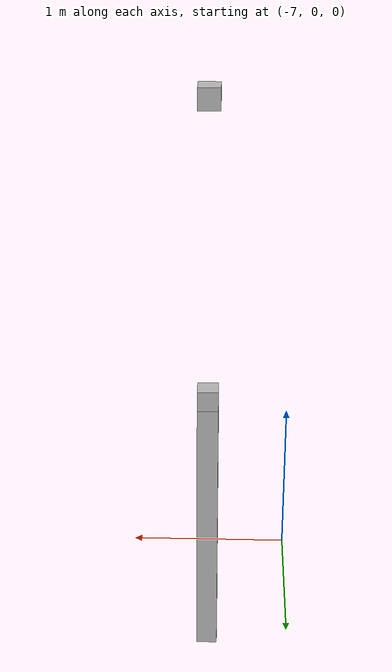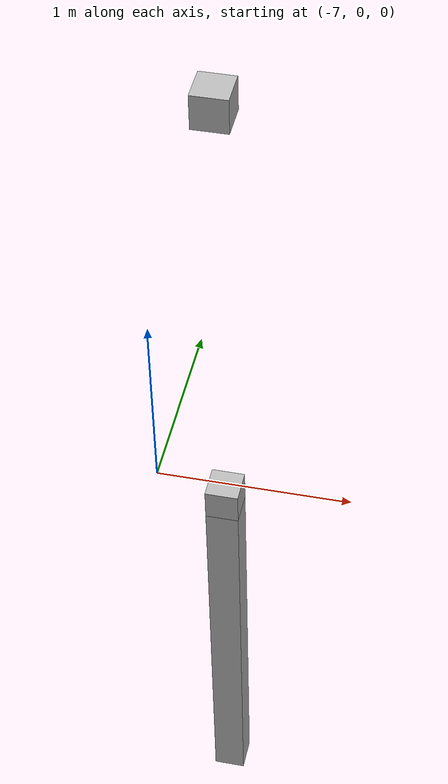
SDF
<sdf version="1.7">
 <world name="default">
  <model name="orthogonal_747_2.000.15_TS">
   <static>1</static>
   <link name="u_link_1_2_0">
    <inertial>
     <mass>1</mass>
     <inertia>
      <ixx>0.166667</ixx>
      <ixy>0</ixy>
      <ixz>0</ixz>
      <iyy>0.166667</iyy>
      <iyz>0</iyz>
      <izz>0.166667</izz>
     </inertia>
    </inertial>
    <pose>0 4.3 3.225 0 -0 0</pose>
    <visual name="visual_0">
     <laser_retro>1156</laser_retro>
     <geometry><box><size>0.15 1e-06 0.15</size></box></geometry>
     <material>
      <script><name>Gazebo/Grey</name><uri>file://media/materials/scripts/gazebo.material</uri></script>
      <shader type="pixel"><normal_map>__default__</normal_map></shader>
      <ambient>0.678 0.498 0.659 1</ambient>
      <diffuse>0.7 0.7 0.7 1</diffuse>
      <specular>0.01 0.01 0.01 1</specular>
      <emissive>0 0 0 1</emissive>
     </material>
     <pose>0 -0.075 0 0 -0 0</pose>
     <transparency>1</transparency>
    </visual>
    <visual name="visual_1">
     <laser_retro>1157</laser_retro>
     <geometry><box><size>0.15 1e-06 0.15</size></box></geometry>
     <material>
      <script><name>Gazebo/Grey</name><uri>file://media/materials/scripts/gazebo.material</uri></script>
      <shader type="pixel"><normal_map>__default__</normal_map></shader>
      <ambient>0.447 0.624 0.812 1</ambient>
      <diffuse>0.7 0.7 0.7 1</diffuse>
      <specular>0.01 0.01 0.01 1</specular>
      <emissive>0 0 0 1</emissive>
     </material>
     <pose>0 0.075 0 0 -0 0</pose>
     <transparency>1</transparency>
    </visual>
    <visual name="visual_2">
     <laser_retro>1158</laser_retro>
     <geometry><box><size>0.15 0.15 1e-06</size></box></geometry>
     <material>
      <script><name>Gazebo/Grey</name><uri>file://media/materials/scripts/gazebo.material</uri></script>
      <shader type="pixel"><normal_map>__default__</normal_map></shader>
      <ambient>0.988 0.686 0.243 1</ambient>
      <diffuse>0.7 0.7 0.7 1</diffuse>
      <specular>0.01 0.01 0.01 1</specular>
      <emissive>0 0 0 1</emissive>
     </material>
     <pose>0 0 -0.075 0 -0 0</pose>
     <transparency>1</transparency>
    </visual>
    <visual name="visual_3">
     <laser_retro>1159</laser_retro>
     <geometry><box><size>1e-06 0.15 0.15</size></box></geometry>
     <material>
      <script><name>Gazebo/Grey</name><uri>file://media/materials/scripts/gazebo.material</uri></script>
      <shader type="pixel"><normal_map>__default__</normal_map></shader>
      <ambient>0.988 0.914 0.31 1</ambient>
      <diffuse>0.7 0.7 0.7 1</diffuse>
      <specular>0.01 0.01 0.01 1</specular>
      <emissive>0 0 0 1</emissive>
     </material>
     <pose>0.075 0 0 0 -0 0</pose>
     <transparency>1</transparency>
    </visual>
    <visual name="visual_4">
     <laser_retro>1160</laser_retro>
     <geometry><box><size>0.15 0.15 1e-06</size></box></geometry>
     <material>
      <script><name>Gazebo/Grey</name><uri>file://media/materials/scripts/gazebo.material</uri></script>
      <shader type="pixel"><normal_map>__default__</normal_map></shader>
      <ambient>0.937 0.161 0.161 1</ambient>
      <diffuse>0.7 0.7 0.7 1</diffuse>
      <specular>0.01 0.01 0.01 1</specular>
      <emissive>0 0 0 1</emissive>
     </material>
     <pose>0 0 0.075 0 -0 0</pose>
     <transparency>1</transparency>
    </visual>
    <visual name="visual_5">
     <laser_retro>1161</laser_retro>
     <geometry><box><size>1e-06 0.15 0.15</size></box></geometry>
     <material>
      <script><name>Gazebo/Grey</name><uri>file://media/materials/scripts/gazebo.material</uri></script>
      <shader type="pixel"><normal_map>__default__</normal_map></shader>
      <ambient>0.541 0.886 0.204 1</ambient>
      <diffuse>0.7 0.7 0.7 1</diffuse>
      <specular>0.01 0.01 0.01 1</specular>
      <emissive>0 0 0 1</emissive>
     </material>
     <pose>-0.075 0 0 0 -0 0</pose>
     <transparency>1</transparency>
    </visual>
    <visual name="visual_texture">
     <geometry><box><size>0.149985 0.149985 0.149985</size></box></geometry>
     <material>
      <script>
       <uri>model://BASE_MODELS/simple_block_v2_textured/materials/scripts</uri>
       <uri>model://BASE_MODELS/simple_block_v2_textured/materials/textures</uri>
       <name>metal</name>
      </script>
     </material>
     <laser_retro>1162</laser_retro>
    </visual>
    <collision name="collision">
     <geometry><box><size>0.15 0.15 0.15</size></box></geometry>
     <surface>
      <friction>
       <ode><mu>1</mu><mu2>1</mu2><fdir1>0 0 0</fdir1><slip1>0</slip1><slip2>0</slip2></ode>
       <torsional>
        <coefficient>1</coefficient>
        <patch_radius>0</patch_radius>
        <surface_radius>0</surface_radius>
        <use_patch_radius>1</use_patch_radius>
        <ode><slip>0</slip></ode>
       </torsional>
      </friction>
      <bounce><restitution_coefficient>0</restitution_coefficient><threshold>1e+06</threshold></bounce>
      <contact>
       <collide_without_contact>0</collide_without_contact>
       <collide_without_contact_bitmask>1</collide_without_contact_bitmask>
       <collide_bitmask>1</collide_bitmask>
       <ode>
        <soft_cfm>0</soft_cfm>
        <soft_erp>0.2</soft_erp>
        <kp>1e+13</kp>
        <kd>1</kd>
        <max_vel>0.01</max_vel>
        <min_depth>0</min_depth>
       </ode>
       <bullet>
        <split_impulse>1</split_impulse>
        <split_impulse_penetration_threshold>-0.01</split_impulse_penetration_threshold>
        <soft_cfm>0</soft_cfm>
        <soft_erp>0.2</soft_erp>
        <kp>1e+13</kp>
        <kd>1</kd>
       </bullet>
      </contact>
     </surface>
    </collision>
   </link>
   <link name="z_link_1_2_0">
    <inertial>
     <mass>1</mass>
     <inertia>
      <ixx>0.166667</ixx>
      <ixy>0</ixy>
      <ixz>0</ixz>
      <iyy>0.166667</iyy>
      <iyz>0</iyz>
      <izz>0.166667</izz>
     </inertia>
    </inertial>
    <pose>0 4.3 2.15 0 -0 0</pose>
    <visual name="visual_0">
     <laser_retro>1163</laser_retro>
     <geometry><box><size>0.15 1e-06 2</size></box></geometry>
     <material>
      <script><name>Gazebo/Grey</name><uri>file://media/materials/scripts/gazebo.material</uri></script>
      <shader type="pixel"><normal_map>__default__</normal_map></shader>
      <ambient>0.678 0.498 0.659 1</ambient>
      <diffuse>0.7 0.7 0.7 1</diffuse>
      <specular>0.01 0.01 0.01 1</specular>
      <emissive>0 0 0 1</emissive>
     </material>
     <pose>0 -0.075 0 0 -0 0</pose>
     <transparency>1</transparency>
    </visual>
    <visual name="visual_1">
     <laser_retro>1164</laser_retro>
     <geometry><box><size>0.15 1e-06 2</size></box></geometry>
     <material>
      <script><name>Gazebo/Grey</name><uri>file://media/materials/scripts/gazebo.material</uri></script>
      <shader type="pixel"><normal_map>__default__</normal_map></shader>
      <ambient>0.447 0.624 0.812 1</ambient>
      <diffuse>0.7 0.7 0.7 1</diffuse>
      <specular>0.01 0.01 0.01 1</specular>
      <emissive>0 0 0 1</emissive>
     </material>
     <pose>0 0.075 0 0 -0 0</pose>
     <transparency>1</transparency>
    </visual>
    <visual name="visual_2">
     <laser_retro>1165</laser_retro>
     <geometry><box><size>0.15 0.15 1e-06</size></box></geometry>
     <material>
      <script><name>Gazebo/Grey</name><uri>file://media/materials/scripts/gazebo.material</uri></script>
      <shader type="pixel"><normal_map>__default__</normal_map></shader>
      <ambient>0.988 0.686 0.243 1</ambient>
      <diffuse>0.7 0.7 0.7 1</diffuse>
      <specular>0.01 0.01 0.01 1</specular>
      <emissive>0 0 0 1</emissive>
     </material>
     <pose>0 0 -1 0 -0 0</pose>
     <transparency>1</transparency>
    </visual>
    <visual name="visual_3">
     <laser_retro>1166</laser_retro>
     <geometry><box><size>1e-06 0.15 2</size></box></geometry>
     <material>
      <script><name>Gazebo/Grey</name><uri>file://media/materials/scripts/gazebo.material</uri></script>
      <shader type="pixel"><normal_map>__default__</normal_map></shader>
      <ambient>0.988 0.914 0.31 1</ambient>
      <diffuse>0.7 0.7 0.7 1</diffuse>
      <specular>0.01 0.01 0.01 1</specular>
      <emissive>0 0 0 1</emissive>
     </material>
     <pose>0.075 0 0 0 -0 0</pose>
     <transparency>1</transparency>
    </visual>
    <visual name="visual_4">
     <laser_retro>1167</laser_retro>
     <geometry><box><size>0.15 0.15 1e-06</size></box></geometry>
     <material>
      <script><name>Gazebo/Grey</name><uri>file://media/materials/scripts/gazebo.material</uri></script>
      <shader type="pixel"><normal_map>__default__</normal_map></shader>
      <ambient>0.937 0.161 0.161 1</ambient>
      <diffuse>0.7 0.7 0.7 1</diffuse>
      <specular>0.01 0.01 0.01 1</specular>
      <emissive>0 0 0 1</emissive>
     </material>
     <pose>0 0 1 0 -0 0</pose>
     <transparency>1</transparency>
    </visual>
    <visual name="visual_5">
     <laser_retro>1168</laser_retro>
     <geometry><box><size>1e-06 0.15 2</size></box></geometry>
     <material>
      <script><name>Gazebo/Grey</name><uri>file://media/materials/scripts/gazebo.material</uri></script>
      <shader type="pixel"><normal_map>__default__</normal_map></shader>
      <ambient>0.541 0.886 0.204 1</ambient>
      <diffuse>0.7 0.7 0.7 1</diffuse>
      <specular>0.01 0.01 0.01 1</specular>
      <emissive>0 0 0 1</emissive>
     </material>
     <pose>-0.075 0 0 0 -0 0</pose>
     <transparency>1</transparency>
    </visual>
    <visual name="visual_texture">
     <geometry><box><size>0.149985 0.149985 1.9998</size></box></geometry>
     <material>
      <script>
       <uri>model://BASE_MODELS/simple_block_v2_textured/materials/scripts</uri>
       <uri>model://BASE_MODELS/simple_block_v2_textured/materials/textures</uri>
       <name>metal</name>
      </script>
     </material>
     <laser_retro>1169</laser_retro>
    </visual>
    <collision name="collision">
     <geometry><box><size>0.15 0.15 2</size></box></geometry>
     <surface>
      <friction>
       <ode><mu>1</mu><mu2>1</mu2><fdir1>0 0 0</fdir1><slip1>0</slip1><slip2>0</slip2></ode>
       <torsional>
        <coefficient>1</coefficient>
        <patch_radius>0</patch_radius>
        <surface_radius>0</surface_radius>
        <use_patch_radius>1</use_patch_radius>
        <ode><slip>0</slip></ode>
       </torsional>
      </friction>
      <bounce><restitution_coefficient>0</restitution_coefficient><threshold>1e+06</threshold></bounce>
      <contact>
       <collide_without_contact>0</collide_without_contact>
       <collide_without_contact_bitmask>1</collide_without_contact_bitmask>
       <collide_bitmask>1</collide_bitmask>
       <ode>
        <soft_cfm>0</soft_cfm>
        <soft_erp>0.2</soft_erp>
        <kp>1e+13</kp>
        <kd>1</kd>
        <max_vel>0.01</max_vel>
        <min_depth>0</min_depth>
       </ode>
       <bullet>
        <split_impulse>1</split_impulse>
        <split_impulse_penetration_threshold>-0.01</split_impulse_penetration_threshold>
        <soft_cfm>0</soft_cfm>
        <soft_erp>0.2</soft_erp>
        <kp>1e+13</kp>
        <kd>1</kd>
       </bullet>
      </contact>
     </surface>
    </collision>
   </link>
   <link name="u_link_2_2_0">
    <inertial>
     <mass>1</mass>
     <inertia>
      <ixx>0.166667</ixx>
      <ixy>0</ixy>
      <ixz>0</ixz>
      <iyy>0.166667</iyy>
      <iyz>0</iyz>
      <izz>0.166667</izz>
     </inertia>
    </inertial>
    <pose>0 4.3 5.375 0 -0 0</pose>
    <visual name="visual_0">
     <laser_retro>2059</laser_retro>
     <geometry><box><size>0.15 1e-06 0.15</size></box></geometry>
     <material>
      <script><name>Gazebo/Grey</name><uri>file://media/materials/scripts/gazebo.material</uri></script>
      <shader type="pixel"><normal_map>__default__</normal_map></shader>
      <ambient>0.678 0.498 0.659 1</ambient>
      <diffuse>0.7 0.7 0.7 1</diffuse>
      <specular>0.01 0.01 0.01 1</specular>
      <emissive>0 0 0 1</emissive>
     </material>
     <pose>0 -0.075 0 0 -0 0</pose>
     <transparency>1</transparency>
    </visual>
    <visual name="visual_1">
     <laser_retro>2060</laser_retro>
     <geometry><box><size>0.15 1e-06 0.15</size></box></geometry>
     <material>
      <script><name>Gazebo/Grey</name><uri>file://media/materials/scripts/gazebo.material</uri></script>
      <shader type="pixel"><normal_map>__default__</normal_map></shader>
      <ambient>0.447 0.624 0.812 1</ambient>
      <diffuse>0.7 0.7 0.7 1</diffuse>
      <specular>0.01 0.01 0.01 1</specular>
      <emissive>0 0 0 1</emissive>
     </material>
     <pose>0 0.075 0 0 -0 0</pose>
     <transparency>1</transparency>
    </visual>
    <visual name="visual_2">
     <laser_retro>2061</laser_retro>
     <geometry><box><size>0.15 0.15 1e-06</size></box></geometry>
     <material>
      <script><name>Gazebo/Grey</name><uri>file://media/materials/scripts/gazebo.material</uri></script>
      <shader type="pixel"><normal_map>__default__</normal_map></shader>
      <ambient>0.988 0.686 0.243 1</ambient>
      <diffuse>0.7 0.7 0.7 1</diffuse>
      <specular>0.01 0.01 0.01 1</specular>
      <emissive>0 0 0 1</emissive>
     </material>
     <pose>0 0 -0.075 0 -0 0</pose>
     <transparency>1</transparency>
    </visual>
    <visual name="visual_3">
     <laser_retro>2062</laser_retro>
     <geometry><box><size>1e-06 0.15 0.15</size></box></geometry>
     <material>
      <script><name>Gazebo/Grey</name><uri>file://media/materials/scripts/gazebo.material</uri></script>
      <shader type="pixel"><normal_map>__default__</normal_map></shader>
      <ambient>0.988 0.914 0.31 1</ambient>
      <diffuse>0.7 0.7 0.7 1</diffuse>
      <specular>0.01 0.01 0.01 1</specular>
      <emissive>0 0 0 1</emissive>
     </material>
     <pose>0.075 0 0 0 -0 0</pose>
     <transparency>1</transparency>
    </visual>
    <visual name="visual_4">
     <laser_retro>2063</laser_retro>
     <geometry><box><size>0.15 0.15 1e-06</size></box></geometry>
     <material>
      <script><name>Gazebo/Grey</name><uri>file://media/materials/scripts/gazebo.material</uri></script>
      <shader type="pixel"><normal_map>__default__</normal_map></shader>
      <ambient>0.937 0.161 0.161 1</ambient>
      <diffuse>0.7 0.7 0.7 1</diffuse>
      <specular>0.01 0.01 0.01 1</specular>
      <emissive>0 0 0 1</emissive>
     </material>
     <pose>0 0 0.075 0 -0 0</pose>
     <transparency>1</transparency>
    </visual>
    <visual name="visual_5">
     <laser_retro>2064</laser_retro>
     <geometry><box><size>1e-06 0.15 0.15</size></box></geometry>
     <material>
      <script><name>Gazebo/Grey</name><uri>file://media/materials/scripts/gazebo.material</uri></script>
      <shader type="pixel"><normal_map>__default__</normal_map></shader>
      <ambient>0.541 0.886 0.204 1</ambient>
      <diffuse>0.7 0.7 0.7 1</diffuse>
      <specular>0.01 0.01 0.01 1</specular>
      <emissive>0 0 0 1</emissive>
     </material>
     <pose>-0.075 0 0 0 -0 0</pose>
     <transparency>1</transparency>
    </visual>
    <visual name="visual_texture">
     <geometry><box><size>0.149985 0.149985 0.149985</size></box></geometry>
     <material>
      <script>
       <uri>model://BASE_MODELS/simple_block_v2_textured/materials/scripts</uri>
       <uri>model://BASE_MODELS/simple_block_v2_textured/materials/textures</uri>
       <name>metal</name>
      </script>
     </material>
     <laser_retro>2065</laser_retro>
    </visual>
    <collision name="collision">
     <geometry><box><size>0.15 0.15 0.15</size></box></geometry>
     <surface>
      <friction>
       <ode><mu>1</mu><mu2>1</mu2><fdir1>0 0 0</fdir1><slip1>0</slip1><slip2>0</slip2></ode>
       <torsional>
        <coefficient>1</coefficient>
        <patch_radius>0</patch_radius>
        <surface_radius>0</surface_radius>
        <use_patch_radius>1</use_patch_radius>
        <ode><slip>0</slip></ode>
       </torsional>
      </friction>
      <bounce><restitution_coefficient>0</restitution_coefficient><threshold>1e+06</threshold></bounce>
      <contact>
       <collide_without_contact>0</collide_without_contact>
       <collide_without_contact_bitmask>1</collide_without_contact_bitmask>
       <collide_bitmask>1</collide_bitmask>
       <ode>
        <soft_cfm>0</soft_cfm>
        <soft_erp>0.2</soft_erp>
        <kp>1e+13</kp>
        <kd>1</kd>
        <max_vel>0.01</max_vel>
        <min_depth>0</min_depth>
       </ode>
       <bullet>
        <split_impulse>1</split_impulse>
        <split_impulse_penetration_threshold>-0.01</split_impulse_penetration_threshold>
        <soft_cfm>0</soft_cfm>
        <soft_erp>0.2</soft_erp>
        <kp>1e+13</kp>
        <kd>1</kd>
       </bullet>
      </contact>
     </surface>
    </collision>
   </link>
   <pose>-6.47624 -5 -2.5 0 -0 0</pose>
  </model>
 </world>
</sdf>
